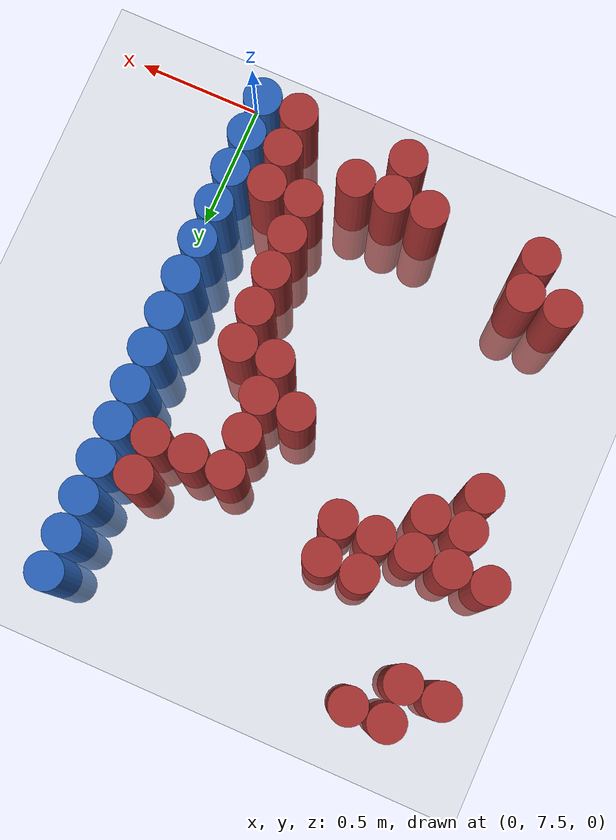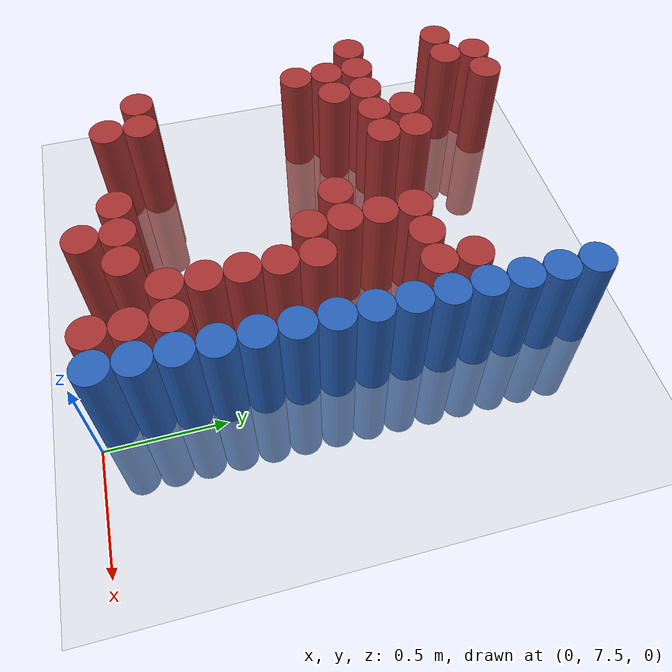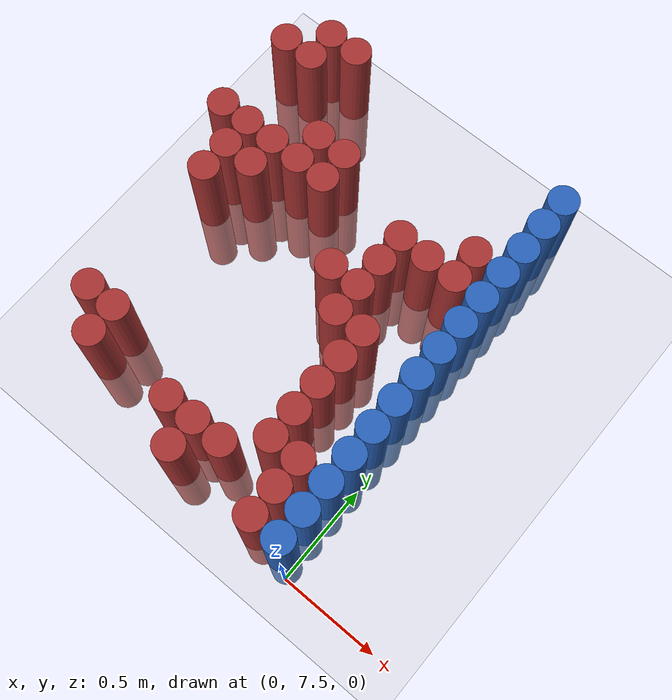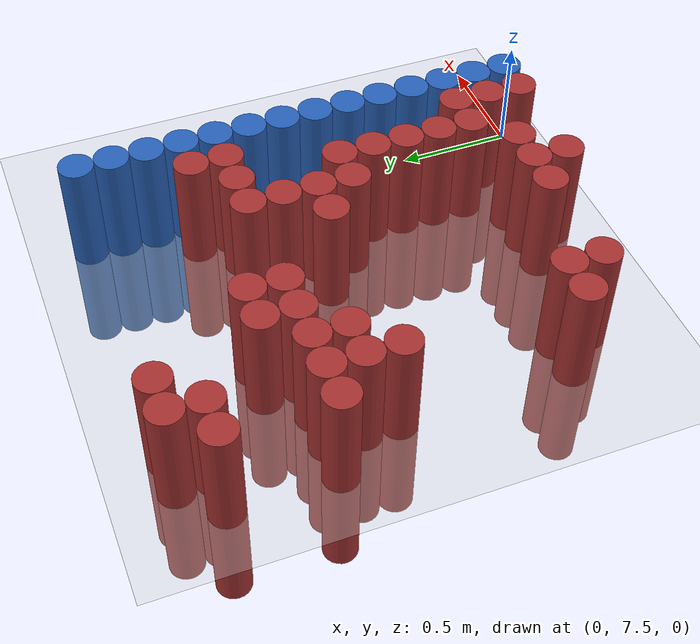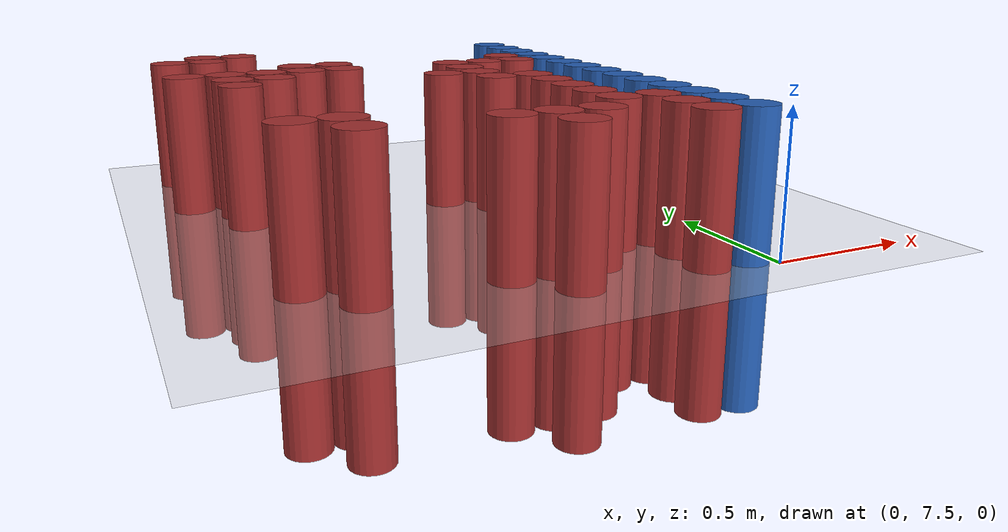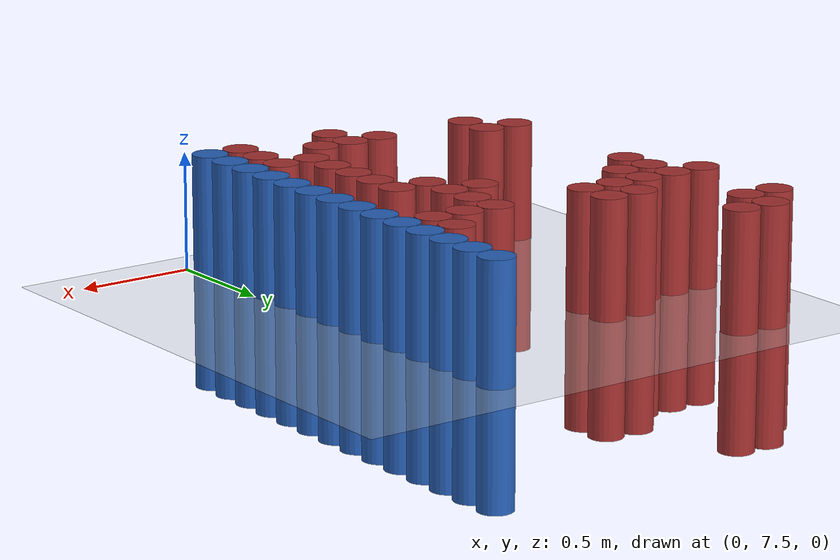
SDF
<sdf version="1.6">
 <world name="default">
  <model name="ground_plane">
   <static>1</static>
   <link name="link">
    <collision name="collision">
     <geometry><plane><normal>0 0 1</normal><size>100 100</size></plane></geometry>
     <surface><friction><ode><mu>100</mu><mu2>50</mu2></ode></friction></surface>
    </collision>
    <visual name="visual">
     <cast_shadows>0</cast_shadows>
     <geometry><plane><normal>0 0 1</normal><size>100 100</size></plane></geometry>
     <material>
      <script><uri>file://media/materials/scripts/gazebo.material</uri><name>Gazebo/Grey</name></script>
     </material>
    </visual>
   </link>
  </model>
  <model name="unit_cylinder_231">
   <static>1</static>
   <pose>-1.575000 8.925000 0.000000 0.000000 0.000000 0.000000</pose>
   <link name="link">
    <inertial>
     <mass>1</mass>
     <inertia><ixx>0.145833</ixx><ixy>0</ixy><ixz>0</ixz><iyy>0.145833</iyy><iyz>0</iyz><izz>0.125</izz></inertia>
    </inertial>
    <collision name="collision">
     <geometry><cylinder><radius>0.075000</radius><length>1</length></cylinder></geometry>
    </collision>
    <visual name="visual">
     <geometry><cylinder><radius>0.075000</radius><length>1</length></cylinder></geometry>
     <material>
      <ambient>0.648000 0.192000 0.192000 1</ambient>
      <diffuse>0.648000 0.192000 0.192000 1</diffuse>
     </material>
     <material>
      <script><name>Gazebo/Grey</name><uri>file://media/materials/scripts/gazebo.material</uri></script>
     </material>
    </visual>
   </link>
  </model>
  <model name="unit_cylinder_232">
   <static>1</static>
   <pose>-1.575000 9.375000 0.000000 0.000000 0.000000 0.000000</pose>
   <link name="link">
    <inertial>
     <mass>1</mass>
     <inertia><ixx>0.145833</ixx><ixy>0</ixy><ixz>0</ixz><iyy>0.145833</iyy><iyz>0</iyz><izz>0.125</izz></inertia>
    </inertial>
    <collision name="collision">
     <geometry><cylinder><radius>0.075000</radius><length>1</length></cylinder></geometry>
    </collision>
    <visual name="visual">
     <geometry><cylinder><radius>0.075000</radius><length>1</length></cylinder></geometry>
     <material>
      <ambient>0.648000 0.192000 0.192000 1</ambient>
      <diffuse>0.648000 0.192000 0.192000 1</diffuse>
     </material>
     <material>
      <script><name>Gazebo/Grey</name><uri>file://media/materials/scripts/gazebo.material</uri></script>
     </material>
    </visual>
   </link>
  </model>
  <model name="unit_cylinder_235">
   <static>1</static>
   <pose>-1.425000 7.875000 0.000000 0.000000 0.000000 0.000000</pose>
   <link name="link">
    <inertial>
     <mass>1</mass>
     <inertia><ixx>0.145833</ixx><ixy>0</ixy><ixz>0</ixz><iyy>0.145833</iyy><iyz>0</iyz><izz>0.125</izz></inertia>
    </inertial>
    <collision name="collision">
     <geometry><cylinder><radius>0.075000</radius><length>1</length></cylinder></geometry>
    </collision>
    <visual name="visual">
     <geometry><cylinder><radius>0.075000</radius><length>1</length></cylinder></geometry>
     <material>
      <ambient>0.648000 0.192000 0.192000 1</ambient>
      <diffuse>0.648000 0.192000 0.192000 1</diffuse>
     </material>
     <material>
      <script><name>Gazebo/Grey</name><uri>file://media/materials/scripts/gazebo.material</uri></script>
     </material>
    </visual>
   </link>
  </model>
  <model name="unit_cylinder_236">
   <static>1</static>
   <pose>-1.425000 8.625000 0.000000 0.000000 0.000000 0.000000</pose>
   <link name="link">
    <inertial>
     <mass>1</mass>
     <inertia><ixx>0.145833</ixx><ixy>0</ixy><ixz>0</ixz><iyy>0.145833</iyy><iyz>0</iyz><izz>0.125</izz></inertia>
    </inertial>
    <collision name="collision">
     <geometry><cylinder><radius>0.075000</radius><length>1</length></cylinder></geometry>
    </collision>
    <visual name="visual">
     <geometry><cylinder><radius>0.075000</radius><length>1</length></cylinder></geometry>
     <material>
      <ambient>0.648000 0.192000 0.192000 1</ambient>
      <diffuse>0.648000 0.192000 0.192000 1</diffuse>
     </material>
     <material>
      <script><name>Gazebo/Grey</name><uri>file://media/materials/scripts/gazebo.material</uri></script>
     </material>
    </visual>
   </link>
  </model>
  <model name="unit_cylinder_237">
   <static>1</static>
   <pose>-1.425000 8.775000 0.000000 0.000000 0.000000 0.000000</pose>
   <link name="link">
    <inertial>
     <mass>1</mass>
     <inertia><ixx>0.145833</ixx><ixy>0</ixy><ixz>0</ixz><iyy>0.145833</iyy><iyz>0</iyz><izz>0.125</izz></inertia>
    </inertial>
    <collision name="collision">
     <geometry><cylinder><radius>0.075000</radius><length>1</length></cylinder></geometry>
    </collision>
    <visual name="visual">
     <geometry><cylinder><radius>0.075000</radius><length>1</length></cylinder></geometry>
     <material>
      <ambient>0.648000 0.192000 0.192000 1</ambient>
      <diffuse>0.648000 0.192000 0.192000 1</diffuse>
     </material>
     <material>
      <script><name>Gazebo/Grey</name><uri>file://media/materials/scripts/gazebo.material</uri></script>
     </material>
    </visual>
   </link>
  </model>
  <model name="unit_cylinder_238">
   <static>1</static>
   <pose>-1.425000 8.925000 0.000000 0.000000 0.000000 0.000000</pose>
   <link name="link">
    <inertial>
     <mass>1</mass>
     <inertia><ixx>0.145833</ixx><ixy>0</ixy><ixz>0</ixz><iyy>0.145833</iyy><iyz>0</iyz><izz>0.125</izz></inertia>
    </inertial>
    <collision name="collision">
     <geometry><cylinder><radius>0.075000</radius><length>1</length></cylinder></geometry>
    </collision>
    <visual name="visual">
     <geometry><cylinder><radius>0.075000</radius><length>1</length></cylinder></geometry>
     <material>
      <ambient>0.648000 0.192000 0.192000 1</ambient>
      <diffuse>0.648000 0.192000 0.192000 1</diffuse>
     </material>
     <material>
      <script><name>Gazebo/Grey</name><uri>file://media/materials/scripts/gazebo.material</uri></script>
     </material>
    </visual>
   </link>
  </model>
  <model name="unit_cylinder_239">
   <static>1</static>
   <pose>-1.425000 9.375000 0.000000 0.000000 0.000000 0.000000</pose>
   <link name="link">
    <inertial>
     <mass>1</mass>
     <inertia><ixx>0.145833</ixx><ixy>0</ixy><ixz>0</ixz><iyy>0.145833</iyy><iyz>0</iyz><izz>0.125</izz></inertia>
    </inertial>
    <collision name="collision">
     <geometry><cylinder><radius>0.075000</radius><length>1</length></cylinder></geometry>
    </collision>
    <visual name="visual">
     <geometry><cylinder><radius>0.075000</radius><length>1</length></cylinder></geometry>
     <material>
      <ambient>0.648000 0.192000 0.192000 1</ambient>
      <diffuse>0.648000 0.192000 0.192000 1</diffuse>
     </material>
     <material>
      <script><name>Gazebo/Grey</name><uri>file://media/materials/scripts/gazebo.material</uri></script>
     </material>
    </visual>
   </link>
  </model>
  <model name="unit_cylinder_240">
   <static>1</static>
   <pose>-1.425000 9.525000 0.000000 0.000000 0.000000 0.000000</pose>
   <link name="link">
    <inertial>
     <mass>1</mass>
     <inertia><ixx>0.145833</ixx><ixy>0</ixy><ixz>0</ixz><iyy>0.145833</iyy><iyz>0</iyz><izz>0.125</izz></inertia>
    </inertial>
    <collision name="collision">
     <geometry><cylinder><radius>0.075000</radius><length>1</length></cylinder></geometry>
    </collision>
    <visual name="visual">
     <geometry><cylinder><radius>0.075000</radius><length>1</length></cylinder></geometry>
     <material>
      <ambient>0.648000 0.192000 0.192000 1</ambient>
      <diffuse>0.648000 0.192000 0.192000 1</diffuse>
     </material>
     <material>
      <script><name>Gazebo/Grey</name><uri>file://media/materials/scripts/gazebo.material</uri></script>
     </material>
    </visual>
   </link>
  </model>
  <model name="unit_cylinder_245">
   <static>1</static>
   <pose>-1.275000 7.725000 0.000000 0.000000 0.000000 0.000000</pose>
   <link name="link">
    <inertial>
     <mass>1</mass>
     <inertia><ixx>0.145833</ixx><ixy>0</ixy><ixz>0</ixz><iyy>0.145833</iyy><iyz>0</iyz><izz>0.125</izz></inertia>
    </inertial>
    <collision name="collision">
     <geometry><cylinder><radius>0.075000</radius><length>1</length></cylinder></geometry>
    </collision>
    <visual name="visual">
     <geometry><cylinder><radius>0.075000</radius><length>1</length></cylinder></geometry>
     <material>
      <ambient>0.648000 0.192000 0.192000 1</ambient>
      <diffuse>0.648000 0.192000 0.192000 1</diffuse>
     </material>
     <material>
      <script><name>Gazebo/Grey</name><uri>file://media/materials/scripts/gazebo.material</uri></script>
     </material>
    </visual>
   </link>
  </model>
  <model name="unit_cylinder_246">
   <static>1</static>
   <pose>-1.275000 7.875000 0.000000 0.000000 0.000000 0.000000</pose>
   <link name="link">
    <inertial>
     <mass>1</mass>
     <inertia><ixx>0.145833</ixx><ixy>0</ixy><ixz>0</ixz><iyy>0.145833</iyy><iyz>0</iyz><izz>0.125</izz></inertia>
    </inertial>
    <collision name="collision">
     <geometry><cylinder><radius>0.075000</radius><length>1</length></cylinder></geometry>
    </collision>
    <visual name="visual">
     <geometry><cylinder><radius>0.075000</radius><length>1</length></cylinder></geometry>
     <material>
      <ambient>0.648000 0.192000 0.192000 1</ambient>
      <diffuse>0.648000 0.192000 0.192000 1</diffuse>
     </material>
     <material>
      <script><name>Gazebo/Grey</name><uri>file://media/materials/scripts/gazebo.material</uri></script>
     </material>
    </visual>
   </link>
  </model>
  <model name="unit_cylinder_247">
   <static>1</static>
   <pose>-1.275000 8.775000 0.000000 0.000000 0.000000 0.000000</pose>
   <link name="link">
    <inertial>
     <mass>1</mass>
     <inertia><ixx>0.145833</ixx><ixy>0</ixy><ixz>0</ixz><iyy>0.145833</iyy><iyz>0</iyz><izz>0.125</izz></inertia>
    </inertial>
    <collision name="collision">
     <geometry><cylinder><radius>0.075000</radius><length>1</length></cylinder></geometry>
    </collision>
    <visual name="visual">
     <geometry><cylinder><radius>0.075000</radius><length>1</length></cylinder></geometry>
     <material>
      <ambient>0.648000 0.192000 0.192000 1</ambient>
      <diffuse>0.648000 0.192000 0.192000 1</diffuse>
     </material>
     <material>
      <script><name>Gazebo/Grey</name><uri>file://media/materials/scripts/gazebo.material</uri></script>
     </material>
    </visual>
   </link>
  </model>
  <model name="unit_cylinder_248">
   <static>1</static>
   <pose>-1.275000 8.925000 0.000000 0.000000 0.000000 0.000000</pose>
   <link name="link">
    <inertial>
     <mass>1</mass>
     <inertia><ixx>0.145833</ixx><ixy>0</ixy><ixz>0</ixz><iyy>0.145833</iyy><iyz>0</iyz><izz>0.125</izz></inertia>
    </inertial>
    <collision name="collision">
     <geometry><cylinder><radius>0.075000</radius><length>1</length></cylinder></geometry>
    </collision>
    <visual name="visual">
     <geometry><cylinder><radius>0.075000</radius><length>1</length></cylinder></geometry>
     <material>
      <ambient>0.648000 0.192000 0.192000 1</ambient>
      <diffuse>0.648000 0.192000 0.192000 1</diffuse>
     </material>
     <material>
      <script><name>Gazebo/Grey</name><uri>file://media/materials/scripts/gazebo.material</uri></script>
     </material>
    </visual>
   </link>
  </model>
  <model name="unit_cylinder_249">
   <static>1</static>
   <pose>-1.275000 9.525000 0.000000 0.000000 0.000000 0.000000</pose>
   <link name="link">
    <inertial>
     <mass>1</mass>
     <inertia><ixx>0.145833</ixx><ixy>0</ixy><ixz>0</ixz><iyy>0.145833</iyy><iyz>0</iyz><izz>0.125</izz></inertia>
    </inertial>
    <collision name="collision">
     <geometry><cylinder><radius>0.075000</radius><length>1</length></cylinder></geometry>
    </collision>
    <visual name="visual">
     <geometry><cylinder><radius>0.075000</radius><length>1</length></cylinder></geometry>
     <material>
      <ambient>0.648000 0.192000 0.192000 1</ambient>
      <diffuse>0.648000 0.192000 0.192000 1</diffuse>
     </material>
     <material>
      <script><name>Gazebo/Grey</name><uri>file://media/materials/scripts/gazebo.material</uri></script>
     </material>
    </visual>
   </link>
  </model>
  <model name="unit_cylinder_259">
   <static>1</static>
   <pose>-1.125000 8.925000 0.000000 0.000000 0.000000 0.000000</pose>
   <link name="link">
    <inertial>
     <mass>1</mass>
     <inertia><ixx>0.145833</ixx><ixy>0</ixy><ixz>0</ixz><iyy>0.145833</iyy><iyz>0</iyz><izz>0.125</izz></inertia>
    </inertial>
    <collision name="collision">
     <geometry><cylinder><radius>0.075000</radius><length>1</length></cylinder></geometry>
    </collision>
    <visual name="visual">
     <geometry><cylinder><radius>0.075000</radius><length>1</length></cylinder></geometry>
     <material>
      <ambient>0.648000 0.192000 0.192000 1</ambient>
      <diffuse>0.648000 0.192000 0.192000 1</diffuse>
     </material>
     <material>
      <script><name>Gazebo/Grey</name><uri>file://media/materials/scripts/gazebo.material</uri></script>
     </material>
    </visual>
   </link>
  </model>
  <model name="unit_cylinder_260">
   <static>1</static>
   <pose>-1.125000 9.075000 0.000000 0.000000 0.000000 0.000000</pose>
   <link name="link">
    <inertial>
     <mass>1</mass>
     <inertia><ixx>0.145833</ixx><ixy>0</ixy><ixz>0</ixz><iyy>0.145833</iyy><iyz>0</iyz><izz>0.125</izz></inertia>
    </inertial>
    <collision name="collision">
     <geometry><cylinder><radius>0.075000</radius><length>1</length></cylinder></geometry>
    </collision>
    <visual name="visual">
     <geometry><cylinder><radius>0.075000</radius><length>1</length></cylinder></geometry>
     <material>
      <ambient>0.648000 0.192000 0.192000 1</ambient>
      <diffuse>0.648000 0.192000 0.192000 1</diffuse>
     </material>
     <material>
      <script><name>Gazebo/Grey</name><uri>file://media/materials/scripts/gazebo.material</uri></script>
     </material>
    </visual>
   </link>
  </model>
  <model name="unit_cylinder_267">
   <static>1</static>
   <pose>-0.975000 8.925000 0.000000 0.000000 0.000000 0.000000</pose>
   <link name="link">
    <inertial>
     <mass>1</mass>
     <inertia><ixx>0.145833</ixx><ixy>0</ixy><ixz>0</ixz><iyy>0.145833</iyy><iyz>0</iyz><izz>0.125</izz></inertia>
    </inertial>
    <collision name="collision">
     <geometry><cylinder><radius>0.075000</radius><length>1</length></cylinder></geometry>
    </collision>
    <visual name="visual">
     <geometry><cylinder><radius>0.075000</radius><length>1</length></cylinder></geometry>
     <material>
      <ambient>0.648000 0.192000 0.192000 1</ambient>
      <diffuse>0.648000 0.192000 0.192000 1</diffuse>
     </material>
     <material>
      <script><name>Gazebo/Grey</name><uri>file://media/materials/scripts/gazebo.material</uri></script>
     </material>
    </visual>
   </link>
  </model>
  <model name="unit_cylinder_268">
   <static>1</static>
   <pose>-0.975000 9.075000 0.000000 0.000000 0.000000 0.000000</pose>
   <link name="link">
    <inertial>
     <mass>1</mass>
     <inertia><ixx>0.145833</ixx><ixy>0</ixy><ixz>0</ixz><iyy>0.145833</iyy><iyz>0</iyz><izz>0.125</izz></inertia>
    </inertial>
    <collision name="collision">
     <geometry><cylinder><radius>0.075000</radius><length>1</length></cylinder></geometry>
    </collision>
    <visual name="visual">
     <geometry><cylinder><radius>0.075000</radius><length>1</length></cylinder></geometry>
     <material>
      <ambient>0.648000 0.192000 0.192000 1</ambient>
      <diffuse>0.648000 0.192000 0.192000 1</diffuse>
     </material>
     <material>
      <script><name>Gazebo/Grey</name><uri>file://media/materials/scripts/gazebo.material</uri></script>
     </material>
    </visual>
   </link>
  </model>
  <model name="unit_cylinder_276">
   <static>1</static>
   <pose>-0.825000 7.725000 0.000000 0.000000 0.000000 0.000000</pose>
   <link name="link">
    <inertial>
     <mass>1</mass>
     <inertia><ixx>0.145833</ixx><ixy>0</ixy><ixz>0</ixz><iyy>0.145833</iyy><iyz>0</iyz><izz>0.125</izz></inertia>
    </inertial>
    <collision name="collision">
     <geometry><cylinder><radius>0.075000</radius><length>1</length></cylinder></geometry>
    </collision>
    <visual name="visual">
     <geometry><cylinder><radius>0.075000</radius><length>1</length></cylinder></geometry>
     <material>
      <ambient>0.648000 0.192000 0.192000 1</ambient>
      <diffuse>0.648000 0.192000 0.192000 1</diffuse>
     </material>
     <material>
      <script><name>Gazebo/Grey</name><uri>file://media/materials/scripts/gazebo.material</uri></script>
     </material>
    </visual>
   </link>
  </model>
  <model name="unit_cylinder_283">
   <static>1</static>
   <pose>-0.675000 7.575000 0.000000 0.000000 0.000000 0.000000</pose>
   <link name="link">
    <inertial>
     <mass>1</mass>
     <inertia><ixx>0.145833</ixx><ixy>0</ixy><ixz>0</ixz><iyy>0.145833</iyy><iyz>0</iyz><izz>0.125</izz></inertia>
    </inertial>
    <collision name="collision">
     <geometry><cylinder><radius>0.075000</radius><length>1</length></cylinder></geometry>
    </collision>
    <visual name="visual">
     <geometry><cylinder><radius>0.075000</radius><length>1</length></cylinder></geometry>
     <material>
      <ambient>0.648000 0.192000 0.192000 1</ambient>
      <diffuse>0.648000 0.192000 0.192000 1</diffuse>
     </material>
     <material>
      <script><name>Gazebo/Grey</name><uri>file://media/materials/scripts/gazebo.material</uri></script>
     </material>
    </visual>
   </link>
  </model>
  <model name="unit_cylinder_284">
   <static>1</static>
   <pose>-0.675000 7.725000 0.000000 0.000000 0.000000 0.000000</pose>
   <link name="link">
    <inertial>
     <mass>1</mass>
     <inertia><ixx>0.145833</ixx><ixy>0</ixy><ixz>0</ixz><iyy>0.145833</iyy><iyz>0</iyz><izz>0.125</izz></inertia>
    </inertial>
    <collision name="collision">
     <geometry><cylinder><radius>0.075000</radius><length>1</length></cylinder></geometry>
    </collision>
    <visual name="visual">
     <geometry><cylinder><radius>0.075000</radius><length>1</length></cylinder></geometry>
     <material>
      <ambient>0.648000 0.192000 0.192000 1</ambient>
      <diffuse>0.648000 0.192000 0.192000 1</diffuse>
     </material>
     <material>
      <script><name>Gazebo/Grey</name><uri>file://media/materials/scripts/gazebo.material</uri></script>
     </material>
    </visual>
   </link>
  </model>
  <model name="unit_cylinder_285">
   <static>1</static>
   <pose>-0.675000 8.625000 0.000000 0.000000 0.000000 0.000000</pose>
   <link name="link">
    <inertial>
     <mass>1</mass>
     <inertia><ixx>0.145833</ixx><ixy>0</ixy><ixz>0</ixz><iyy>0.145833</iyy><iyz>0</iyz><izz>0.125</izz></inertia>
    </inertial>
    <collision name="collision">
     <geometry><cylinder><radius>0.075000</radius><length>1</length></cylinder></geometry>
    </collision>
    <visual name="visual">
     <geometry><cylinder><radius>0.075000</radius><length>1</length></cylinder></geometry>
     <material>
      <ambient>0.648000 0.192000 0.192000 1</ambient>
      <diffuse>0.648000 0.192000 0.192000 1</diffuse>
     </material>
     <material>
      <script><name>Gazebo/Grey</name><uri>file://media/materials/scripts/gazebo.material</uri></script>
     </material>
    </visual>
   </link>
  </model>
  <model name="unit_cylinder_291">
   <static>1</static>
   <pose>-0.525000 7.725000 0.000000 0.000000 0.000000 0.000000</pose>
   <link name="link">
    <inertial>
     <mass>1</mass>
     <inertia><ixx>0.145833</ixx><ixy>0</ixy><ixz>0</ixz><iyy>0.145833</iyy><iyz>0</iyz><izz>0.125</izz></inertia>
    </inertial>
    <collision name="collision">
     <geometry><cylinder><radius>0.075000</radius><length>1</length></cylinder></geometry>
    </collision>
    <visual name="visual">
     <geometry><cylinder><radius>0.075000</radius><length>1</length></cylinder></geometry>
     <material>
      <ambient>0.648000 0.192000 0.192000 1</ambient>
      <diffuse>0.648000 0.192000 0.192000 1</diffuse>
     </material>
     <material>
      <script><name>Gazebo/Grey</name><uri>file://media/materials/scripts/gazebo.material</uri></script>
     </material>
    </visual>
   </link>
  </model>
  <model name="unit_cylinder_292">
   <static>1</static>
   <pose>-0.525000 8.475000 0.000000 0.000000 0.000000 0.000000</pose>
   <link name="link">
    <inertial>
     <mass>1</mass>
     <inertia><ixx>0.145833</ixx><ixy>0</ixy><ixz>0</ixz><iyy>0.145833</iyy><iyz>0</iyz><izz>0.125</izz></inertia>
    </inertial>
    <collision name="collision">
     <geometry><cylinder><radius>0.075000</radius><length>1</length></cylinder></geometry>
    </collision>
    <visual name="visual">
     <geometry><cylinder><radius>0.075000</radius><length>1</length></cylinder></geometry>
     <material>
      <ambient>0.648000 0.192000 0.192000 1</ambient>
      <diffuse>0.648000 0.192000 0.192000 1</diffuse>
     </material>
     <material>
      <script><name>Gazebo/Grey</name><uri>file://media/materials/scripts/gazebo.material</uri></script>
     </material>
    </visual>
   </link>
  </model>
  <model name="unit_cylinder_293">
   <static>1</static>
   <pose>-0.525000 8.625000 0.000000 0.000000 0.000000 0.000000</pose>
   <link name="link">
    <inertial>
     <mass>1</mass>
     <inertia><ixx>0.145833</ixx><ixy>0</ixy><ixz>0</ixz><iyy>0.145833</iyy><iyz>0</iyz><izz>0.125</izz></inertia>
    </inertial>
    <collision name="collision">
     <geometry><cylinder><radius>0.075000</radius><length>1</length></cylinder></geometry>
    </collision>
    <visual name="visual">
     <geometry><cylinder><radius>0.075000</radius><length>1</length></cylinder></geometry>
     <material>
      <ambient>0.648000 0.192000 0.192000 1</ambient>
      <diffuse>0.648000 0.192000 0.192000 1</diffuse>
     </material>
     <material>
      <script><name>Gazebo/Grey</name><uri>file://media/materials/scripts/gazebo.material</uri></script>
     </material>
    </visual>
   </link>
  </model>
  <model name="unit_cylinder_294">
   <static>1</static>
   <pose>-0.525000 8.775000 0.000000 0.000000 0.000000 0.000000</pose>
   <link name="link">
    <inertial>
     <mass>1</mass>
     <inertia><ixx>0.145833</ixx><ixy>0</ixy><ixz>0</ixz><iyy>0.145833</iyy><iyz>0</iyz><izz>0.125</izz></inertia>
    </inertial>
    <collision name="collision">
     <geometry><cylinder><radius>0.075000</radius><length>1</length></cylinder></geometry>
    </collision>
    <visual name="visual">
     <geometry><cylinder><radius>0.075000</radius><length>1</length></cylinder></geometry>
     <material>
      <ambient>0.648000 0.192000 0.192000 1</ambient>
      <diffuse>0.648000 0.192000 0.192000 1</diffuse>
     </material>
     <material>
      <script><name>Gazebo/Grey</name><uri>file://media/materials/scripts/gazebo.material</uri></script>
     </material>
    </visual>
   </link>
  </model>
  <model name="unit_cylinder_295">
   <static>1</static>
   <pose>-0.525000 8.925000 0.000000 0.000000 0.000000 0.000000</pose>
   <link name="link">
    <inertial>
     <mass>1</mass>
     <inertia><ixx>0.145833</ixx><ixy>0</ixy><ixz>0</ixz><iyy>0.145833</iyy><iyz>0</iyz><izz>0.125</izz></inertia>
    </inertial>
    <collision name="collision">
     <geometry><cylinder><radius>0.075000</radius><length>1</length></cylinder></geometry>
    </collision>
    <visual name="visual">
     <geometry><cylinder><radius>0.075000</radius><length>1</length></cylinder></geometry>
     <material>
      <ambient>0.648000 0.192000 0.192000 1</ambient>
      <diffuse>0.648000 0.192000 0.192000 1</diffuse>
     </material>
     <material>
      <script><name>Gazebo/Grey</name><uri>file://media/materials/scripts/gazebo.material</uri></script>
     </material>
    </visual>
   </link>
  </model>
  <model name="unit_cylinder_307">
   <static>1</static>
   <pose>-0.375000 7.875000 0.000000 0.000000 0.000000 0.000000</pose>
   <link name="link">
    <inertial>
     <mass>1</mass>
     <inertia><ixx>0.145833</ixx><ixy>0</ixy><ixz>0</ixz><iyy>0.145833</iyy><iyz>0</iyz><izz>0.125</izz></inertia>
    </inertial>
    <collision name="collision">
     <geometry><cylinder><radius>0.075000</radius><length>1</length></cylinder></geometry>
    </collision>
    <visual name="visual">
     <geometry><cylinder><radius>0.075000</radius><length>1</length></cylinder></geometry>
     <material>
      <ambient>0.648000 0.192000 0.192000 1</ambient>
      <diffuse>0.648000 0.192000 0.192000 1</diffuse>
     </material>
     <material>
      <script><name>Gazebo/Grey</name><uri>file://media/materials/scripts/gazebo.material</uri></script>
     </material>
    </visual>
   </link>
  </model>
  <model name="unit_cylinder_308">
   <static>1</static>
   <pose>-0.375000 8.025000 0.000000 0.000000 0.000000 0.000000</pose>
   <link name="link">
    <inertial>
     <mass>1</mass>
     <inertia><ixx>0.145833</ixx><ixy>0</ixy><ixz>0</ixz><iyy>0.145833</iyy><iyz>0</iyz><izz>0.125</izz></inertia>
    </inertial>
    <collision name="collision">
     <geometry><cylinder><radius>0.075000</radius><length>1</length></cylinder></geometry>
    </collision>
    <visual name="visual">
     <geometry><cylinder><radius>0.075000</radius><length>1</length></cylinder></geometry>
     <material>
      <ambient>0.648000 0.192000 0.192000 1</ambient>
      <diffuse>0.648000 0.192000 0.192000 1</diffuse>
     </material>
     <material>
      <script><name>Gazebo/Grey</name><uri>file://media/materials/scripts/gazebo.material</uri></script>
     </material>
    </visual>
   </link>
  </model>
  <model name="unit_cylinder_309">
   <static>1</static>
   <pose>-0.375000 8.175000 0.000000 0.000000 0.000000 0.000000</pose>
   <link name="link">
    <inertial>
     <mass>1</mass>
     <inertia><ixx>0.145833</ixx><ixy>0</ixy><ixz>0</ixz><iyy>0.145833</iyy><iyz>0</iyz><izz>0.125</izz></inertia>
    </inertial>
    <collision name="collision">
     <geometry><cylinder><radius>0.075000</radius><length>1</length></cylinder></geometry>
    </collision>
    <visual name="visual">
     <geometry><cylinder><radius>0.075000</radius><length>1</length></cylinder></geometry>
     <material>
      <ambient>0.648000 0.192000 0.192000 1</ambient>
      <diffuse>0.648000 0.192000 0.192000 1</diffuse>
     </material>
     <material>
      <script><name>Gazebo/Grey</name><uri>file://media/materials/scripts/gazebo.material</uri></script>
     </material>
    </visual>
   </link>
  </model>
  <model name="unit_cylinder_310">
   <static>1</static>
   <pose>-0.375000 8.325000 0.000000 0.000000 0.000000 0.000000</pose>
   <link name="link">
    <inertial>
     <mass>1</mass>
     <inertia><ixx>0.145833</ixx><ixy>0</ixy><ixz>0</ixz><iyy>0.145833</iyy><iyz>0</iyz><izz>0.125</izz></inertia>
    </inertial>
    <collision name="collision">
     <geometry><cylinder><radius>0.075000</radius><length>1</length></cylinder></geometry>
    </collision>
    <visual name="visual">
     <geometry><cylinder><radius>0.075000</radius><length>1</length></cylinder></geometry>
     <material>
      <ambient>0.648000 0.192000 0.192000 1</ambient>
      <diffuse>0.648000 0.192000 0.192000 1</diffuse>
     </material>
     <material>
      <script><name>Gazebo/Grey</name><uri>file://media/materials/scripts/gazebo.material</uri></script>
     </material>
    </visual>
   </link>
  </model>
  <model name="unit_cylinder_311">
   <static>1</static>
   <pose>-0.375000 8.475000 0.000000 0.000000 0.000000 0.000000</pose>
   <link name="link">
    <inertial>
     <mass>1</mass>
     <inertia><ixx>0.145833</ixx><ixy>0</ixy><ixz>0</ixz><iyy>0.145833</iyy><iyz>0</iyz><izz>0.125</izz></inertia>
    </inertial>
    <collision name="collision">
     <geometry><cylinder><radius>0.075000</radius><length>1</length></cylinder></geometry>
    </collision>
    <visual name="visual">
     <geometry><cylinder><radius>0.075000</radius><length>1</length></cylinder></geometry>
     <material>
      <ambient>0.648000 0.192000 0.192000 1</ambient>
      <diffuse>0.648000 0.192000 0.192000 1</diffuse>
     </material>
     <material>
      <script><name>Gazebo/Grey</name><uri>file://media/materials/scripts/gazebo.material</uri></script>
     </material>
    </visual>
   </link>
  </model>
  <model name="unit_cylinder_312">
   <static>1</static>
   <pose>-0.375000 8.925000 0.000000 0.000000 0.000000 0.000000</pose>
   <link name="link">
    <inertial>
     <mass>1</mass>
     <inertia><ixx>0.145833</ixx><ixy>0</ixy><ixz>0</ixz><iyy>0.145833</iyy><iyz>0</iyz><izz>0.125</izz></inertia>
    </inertial>
    <collision name="collision">
     <geometry><cylinder><radius>0.075000</radius><length>1</length></cylinder></geometry>
    </collision>
    <visual name="visual">
     <geometry><cylinder><radius>0.075000</radius><length>1</length></cylinder></geometry>
     <material>
      <ambient>0.648000 0.192000 0.192000 1</ambient>
      <diffuse>0.648000 0.192000 0.192000 1</diffuse>
     </material>
     <material>
      <script><name>Gazebo/Grey</name><uri>file://media/materials/scripts/gazebo.material</uri></script>
     </material>
    </visual>
   </link>
  </model>
  <model name="unit_cylinder_320">
   <static>1</static>
   <pose>-0.225000 7.575000 0.000000 0.000000 0.000000 0.000000</pose>
   <link name="link">
    <inertial>
     <mass>1</mass>
     <inertia><ixx>0.145833</ixx><ixy>0</ixy><ixz>0</ixz><iyy>0.145833</iyy><iyz>0</iyz><izz>0.125</izz></inertia>
    </inertial>
    <collision name="collision">
     <geometry><cylinder><radius>0.075000</radius><length>1</length></cylinder></geometry>
    </collision>
    <visual name="visual">
     <geometry><cylinder><radius>0.075000</radius><length>1</length></cylinder></geometry>
     <material>
      <ambient>0.648000 0.192000 0.192000 1</ambient>
      <diffuse>0.648000 0.192000 0.192000 1</diffuse>
     </material>
     <material>
      <script><name>Gazebo/Grey</name><uri>file://media/materials/scripts/gazebo.material</uri></script>
     </material>
    </visual>
   </link>
  </model>
  <model name="unit_cylinder_321">
   <static>1</static>
   <pose>-0.225000 7.725000 0.000000 0.000000 0.000000 0.000000</pose>
   <link name="link">
    <inertial>
     <mass>1</mass>
     <inertia><ixx>0.145833</ixx><ixy>0</ixy><ixz>0</ixz><iyy>0.145833</iyy><iyz>0</iyz><izz>0.125</izz></inertia>
    </inertial>
    <collision name="collision">
     <geometry><cylinder><radius>0.075000</radius><length>1</length></cylinder></geometry>
    </collision>
    <visual name="visual">
     <geometry><cylinder><radius>0.075000</radius><length>1</length></cylinder></geometry>
     <material>
      <ambient>0.648000 0.192000 0.192000 1</ambient>
      <diffuse>0.648000 0.192000 0.192000 1</diffuse>
     </material>
     <material>
      <script><name>Gazebo/Grey</name><uri>file://media/materials/scripts/gazebo.material</uri></script>
     </material>
    </visual>
   </link>
  </model>
  <model name="unit_cylinder_322">
   <static>1</static>
   <pose>-0.225000 7.875000 0.000000 0.000000 0.000000 0.000000</pose>
   <link name="link">
    <inertial>
     <mass>1</mass>
     <inertia><ixx>0.145833</ixx><ixy>0</ixy><ixz>0</ixz><iyy>0.145833</iyy><iyz>0</iyz><izz>0.125</izz></inertia>
    </inertial>
    <collision name="collision">
     <geometry><cylinder><radius>0.075000</radius><length>1</length></cylinder></geometry>
    </collision>
    <visual name="visual">
     <geometry><cylinder><radius>0.075000</radius><length>1</length></cylinder></geometry>
     <material>
      <ambient>0.648000 0.192000 0.192000 1</ambient>
      <diffuse>0.648000 0.192000 0.192000 1</diffuse>
     </material>
     <material>
      <script><name>Gazebo/Grey</name><uri>file://media/materials/scripts/gazebo.material</uri></script>
     </material>
    </visual>
   </link>
  </model>
  <model name="unit_cylinder_323">
   <static>1</static>
   <pose>-0.225000 8.925000 0.000000 0.000000 0.000000 0.000000</pose>
   <link name="link">
    <inertial>
     <mass>1</mass>
     <inertia><ixx>0.145833</ixx><ixy>0</ixy><ixz>0</ixz><iyy>0.145833</iyy><iyz>0</iyz><izz>0.125</izz></inertia>
    </inertial>
    <collision name="collision">
     <geometry><cylinder><radius>0.075000</radius><length>1</length></cylinder></geometry>
    </collision>
    <visual name="visual">
     <geometry><cylinder><radius>0.075000</radius><length>1</length></cylinder></geometry>
     <material>
      <ambient>0.648000 0.192000 0.192000 1</ambient>
      <diffuse>0.648000 0.192000 0.192000 1</diffuse>
     </material>
     <material>
      <script><name>Gazebo/Grey</name><uri>file://media/materials/scripts/gazebo.material</uri></script>
     </material>
    </visual>
   </link>
  </model>
  <model name="unit_cylinder_324">
   <static>1</static>
   <pose>-0.225000 9.075000 0.000000 0.000000 0.000000 0.000000</pose>
   <link name="link">
    <inertial>
     <mass>1</mass>
     <inertia><ixx>0.145833</ixx><ixy>0</ixy><ixz>0</ixz><iyy>0.145833</iyy><iyz>0</iyz><izz>0.125</izz></inertia>
    </inertial>
    <collision name="collision">
     <geometry><cylinder><radius>0.075000</radius><length>1</length></cylinder></geometry>
    </collision>
    <visual name="visual">
     <geometry><cylinder><radius>0.075000</radius><length>1</length></cylinder></geometry>
     <material>
      <ambient>0.648000 0.192000 0.192000 1</ambient>
      <diffuse>0.648000 0.192000 0.192000 1</diffuse>
     </material>
     <material>
      <script><name>Gazebo/Grey</name><uri>file://media/materials/scripts/gazebo.material</uri></script>
     </material>
    </visual>
   </link>
  </model>
  <model name="unit_cylinder_341">
   <static>1</static>
   <pose>-0.075000 7.575000 0.000000 0.000000 0.000000 0.000000</pose>
   <link name="link">
    <inertial>
     <mass>1</mass>
     <inertia><ixx>0.145833</ixx><ixy>0</ixy><ixz>0</ixz><iyy>0.145833</iyy><iyz>0</iyz><izz>0.125</izz></inertia>
    </inertial>
    <collision name="collision">
     <geometry><cylinder><radius>0.075000</radius><length>1</length></cylinder></geometry>
    </collision>
    <visual name="visual">
     <geometry><cylinder><radius>0.075000</radius><length>1</length></cylinder></geometry>
     <material>
      <ambient>0.152000 0.379000 0.720000 1</ambient>
      <diffuse>0.152000 0.379000 0.720000 1</diffuse>
     </material>
     <material>
      <script><name>Gazebo/Grey</name><uri>file://media/materials/scripts/gazebo.material</uri></script>
     </material>
    </visual>
   </link>
  </model>
  <model name="unit_cylinder_342">
   <static>1</static>
   <pose>-0.075000 7.725000 0.000000 0.000000 0.000000 0.000000</pose>
   <link name="link">
    <inertial>
     <mass>1</mass>
     <inertia><ixx>0.145833</ixx><ixy>0</ixy><ixz>0</ixz><iyy>0.145833</iyy><iyz>0</iyz><izz>0.125</izz></inertia>
    </inertial>
    <collision name="collision">
     <geometry><cylinder><radius>0.075000</radius><length>1</length></cylinder></geometry>
    </collision>
    <visual name="visual">
     <geometry><cylinder><radius>0.075000</radius><length>1</length></cylinder></geometry>
     <material>
      <ambient>0.152000 0.379000 0.720000 1</ambient>
      <diffuse>0.152000 0.379000 0.720000 1</diffuse>
     </material>
     <material>
      <script><name>Gazebo/Grey</name><uri>file://media/materials/scripts/gazebo.material</uri></script>
     </material>
    </visual>
   </link>
  </model>
  <model name="unit_cylinder_343">
   <static>1</static>
   <pose>-0.075000 7.875000 0.000000 0.000000 0.000000 0.000000</pose>
   <link name="link">
    <inertial>
     <mass>1</mass>
     <inertia><ixx>0.145833</ixx><ixy>0</ixy><ixz>0</ixz><iyy>0.145833</iyy><iyz>0</iyz><izz>0.125</izz></inertia>
    </inertial>
    <collision name="collision">
     <geometry><cylinder><radius>0.075000</radius><length>1</length></cylinder></geometry>
    </collision>
    <visual name="visual">
     <geometry><cylinder><radius>0.075000</radius><length>1</length></cylinder></geometry>
     <material>
      <ambient>0.152000 0.379000 0.720000 1</ambient>
      <diffuse>0.152000 0.379000 0.720000 1</diffuse>
     </material>
     <material>
      <script><name>Gazebo/Grey</name><uri>file://media/materials/scripts/gazebo.material</uri></script>
     </material>
    </visual>
   </link>
  </model>
  <model name="unit_cylinder_344">
   <static>1</static>
   <pose>-0.075000 8.025000 0.000000 0.000000 0.000000 0.000000</pose>
   <link name="link">
    <inertial>
     <mass>1</mass>
     <inertia><ixx>0.145833</ixx><ixy>0</ixy><ixz>0</ixz><iyy>0.145833</iyy><iyz>0</iyz><izz>0.125</izz></inertia>
    </inertial>
    <collision name="collision">
     <geometry><cylinder><radius>0.075000</radius><length>1</length></cylinder></geometry>
    </collision>
    <visual name="visual">
     <geometry><cylinder><radius>0.075000</radius><length>1</length></cylinder></geometry>
     <material>
      <ambient>0.152000 0.379000 0.720000 1</ambient>
      <diffuse>0.152000 0.379000 0.720000 1</diffuse>
     </material>
     <material>
      <script><name>Gazebo/Grey</name><uri>file://media/materials/scripts/gazebo.material</uri></script>
     </material>
    </visual>
   </link>
  </model>
  <model name="unit_cylinder_345">
   <static>1</static>
   <pose>-0.075000 8.175000 0.000000 0.000000 0.000000 0.000000</pose>
   <link name="link">
    <inertial>
     <mass>1</mass>
     <inertia><ixx>0.145833</ixx><ixy>0</ixy><ixz>0</ixz><iyy>0.145833</iyy><iyz>0</iyz><izz>0.125</izz></inertia>
    </inertial>
    <collision name="collision">
     <geometry><cylinder><radius>0.075000</radius><length>1</length></cylinder></geometry>
    </collision>
    <visual name="visual">
     <geometry><cylinder><radius>0.075000</radius><length>1</length></cylinder></geometry>
     <material>
      <ambient>0.152000 0.379000 0.720000 1</ambient>
      <diffuse>0.152000 0.379000 0.720000 1</diffuse>
     </material>
     <material>
      <script><name>Gazebo/Grey</name><uri>file://media/materials/scripts/gazebo.material</uri></script>
     </material>
    </visual>
   </link>
  </model>
  <model name="unit_cylinder_346">
   <static>1</static>
   <pose>-0.075000 8.325000 0.000000 0.000000 0.000000 0.000000</pose>
   <link name="link">
    <inertial>
     <mass>1</mass>
     <inertia><ixx>0.145833</ixx><ixy>0</ixy><ixz>0</ixz><iyy>0.145833</iyy><iyz>0</iyz><izz>0.125</izz></inertia>
    </inertial>
    <collision name="collision">
     <geometry><cylinder><radius>0.075000</radius><length>1</length></cylinder></geometry>
    </collision>
    <visual name="visual">
     <geometry><cylinder><radius>0.075000</radius><length>1</length></cylinder></geometry>
     <material>
      <ambient>0.152000 0.379000 0.720000 1</ambient>
      <diffuse>0.152000 0.379000 0.720000 1</diffuse>
     </material>
     <material>
      <script><name>Gazebo/Grey</name><uri>file://media/materials/scripts/gazebo.material</uri></script>
     </material>
    </visual>
   </link>
  </model>
  <model name="unit_cylinder_347">
   <static>1</static>
   <pose>-0.075000 8.475000 0.000000 0.000000 0.000000 0.000000</pose>
   <link name="link">
    <inertial>
     <mass>1</mass>
     <inertia><ixx>0.145833</ixx><ixy>0</ixy><ixz>0</ixz><iyy>0.145833</iyy><iyz>0</iyz><izz>0.125</izz></inertia>
    </inertial>
    <collision name="collision">
     <geometry><cylinder><radius>0.075000</radius><length>1</length></cylinder></geometry>
    </collision>
    <visual name="visual">
     <geometry><cylinder><radius>0.075000</radius><length>1</length></cylinder></geometry>
     <material>
      <ambient>0.152000 0.379000 0.720000 1</ambient>
      <diffuse>0.152000 0.379000 0.720000 1</diffuse>
     </material>
     <material>
      <script><name>Gazebo/Grey</name><uri>file://media/materials/scripts/gazebo.material</uri></script>
     </material>
    </visual>
   </link>
  </model>
  <model name="unit_cylinder_348">
   <static>1</static>
   <pose>-0.075000 8.625000 0.000000 0.000000 0.000000 0.000000</pose>
   <link name="link">
    <inertial>
     <mass>1</mass>
     <inertia><ixx>0.145833</ixx><ixy>0</ixy><ixz>0</ixz><iyy>0.145833</iyy><iyz>0</iyz><izz>0.125</izz></inertia>
    </inertial>
    <collision name="collision">
     <geometry><cylinder><radius>0.075000</radius><length>1</length></cylinder></geometry>
    </collision>
    <visual name="visual">
     <geometry><cylinder><radius>0.075000</radius><length>1</length></cylinder></geometry>
     <material>
      <ambient>0.152000 0.379000 0.720000 1</ambient>
      <diffuse>0.152000 0.379000 0.720000 1</diffuse>
     </material>
     <material>
      <script><name>Gazebo/Grey</name><uri>file://media/materials/scripts/gazebo.material</uri></script>
     </material>
    </visual>
   </link>
  </model>
  <model name="unit_cylinder_349">
   <static>1</static>
   <pose>-0.075000 8.775000 0.000000 0.000000 0.000000 0.000000</pose>
   <link name="link">
    <inertial>
     <mass>1</mass>
     <inertia><ixx>0.145833</ixx><ixy>0</ixy><ixz>0</ixz><iyy>0.145833</iyy><iyz>0</iyz><izz>0.125</izz></inertia>
    </inertial>
    <collision name="collision">
     <geometry><cylinder><radius>0.075000</radius><length>1</length></cylinder></geometry>
    </collision>
    <visual name="visual">
     <geometry><cylinder><radius>0.075000</radius><length>1</length></cylinder></geometry>
     <material>
      <ambient>0.152000 0.379000 0.720000 1</ambient>
      <diffuse>0.152000 0.379000 0.720000 1</diffuse>
     </material>
     <material>
      <script><name>Gazebo/Grey</name><uri>file://media/materials/scripts/gazebo.material</uri></script>
     </material>
    </visual>
   </link>
  </model>
  <model name="unit_cylinder_350">
   <static>1</static>
   <pose>-0.075000 8.925000 0.000000 0.000000 0.000000 0.000000</pose>
   <link name="link">
    <inertial>
     <mass>1</mass>
     <inertia><ixx>0.145833</ixx><ixy>0</ixy><ixz>0</ixz><iyy>0.145833</iyy><iyz>0</iyz><izz>0.125</izz></inertia>
    </inertial>
    <collision name="collision">
     <geometry><cylinder><radius>0.075000</radius><length>1</length></cylinder></geometry>
    </collision>
    <visual name="visual">
     <geometry><cylinder><radius>0.075000</radius><length>1</length></cylinder></geometry>
     <material>
      <ambient>0.152000 0.379000 0.720000 1</ambient>
      <diffuse>0.152000 0.379000 0.720000 1</diffuse>
     </material>
     <material>
      <script><name>Gazebo/Grey</name><uri>file://media/materials/scripts/gazebo.material</uri></script>
     </material>
    </visual>
   </link>
  </model>
  <model name="unit_cylinder_351">
   <static>1</static>
   <pose>-0.075000 9.075000 0.000000 0.000000 0.000000 0.000000</pose>
   <link name="link">
    <inertial>
     <mass>1</mass>
     <inertia><ixx>0.145833</ixx><ixy>0</ixy><ixz>0</ixz><iyy>0.145833</iyy><iyz>0</iyz><izz>0.125</izz></inertia>
    </inertial>
    <collision name="collision">
     <geometry><cylinder><radius>0.075000</radius><length>1</length></cylinder></geometry>
    </collision>
    <visual name="visual">
     <geometry><cylinder><radius>0.075000</radius><length>1</length></cylinder></geometry>
     <material>
      <ambient>0.152000 0.379000 0.720000 1</ambient>
      <diffuse>0.152000 0.379000 0.720000 1</diffuse>
     </material>
     <material>
      <script><name>Gazebo/Grey</name><uri>file://media/materials/scripts/gazebo.material</uri></script>
     </material>
    </visual>
   </link>
  </model>
  <model name="unit_cylinder_352">
   <static>1</static>
   <pose>-0.075000 9.225000 0.000000 0.000000 0.000000 0.000000</pose>
   <link name="link">
    <inertial>
     <mass>1</mass>
     <inertia><ixx>0.145833</ixx><ixy>0</ixy><ixz>0</ixz><iyy>0.145833</iyy><iyz>0</iyz><izz>0.125</izz></inertia>
    </inertial>
    <collision name="collision">
     <geometry><cylinder><radius>0.075000</radius><length>1</length></cylinder></geometry>
    </collision>
    <visual name="visual">
     <geometry><cylinder><radius>0.075000</radius><length>1</length></cylinder></geometry>
     <material>
      <ambient>0.152000 0.379000 0.720000 1</ambient>
      <diffuse>0.152000 0.379000 0.720000 1</diffuse>
     </material>
     <material>
      <script><name>Gazebo/Grey</name><uri>file://media/materials/scripts/gazebo.material</uri></script>
     </material>
    </visual>
   </link>
  </model>
  <model name="unit_cylinder_353">
   <static>1</static>
   <pose>-0.075000 9.375000 0.000000 0.000000 0.000000 0.000000</pose>
   <link name="link">
    <inertial>
     <mass>1</mass>
     <inertia><ixx>0.145833</ixx><ixy>0</ixy><ixz>0</ixz><iyy>0.145833</iyy><iyz>0</iyz><izz>0.125</izz></inertia>
    </inertial>
    <collision name="collision">
     <geometry><cylinder><radius>0.075000</radius><length>1</length></cylinder></geometry>
    </collision>
    <visual name="visual">
     <geometry><cylinder><radius>0.075000</radius><length>1</length></cylinder></geometry>
     <material>
      <ambient>0.152000 0.379000 0.720000 1</ambient>
      <diffuse>0.152000 0.379000 0.720000 1</diffuse>
     </material>
     <material>
      <script><name>Gazebo/Grey</name><uri>file://media/materials/scripts/gazebo.material</uri></script>
     </material>
    </visual>
   </link>
  </model>
  <model name="unit_cylinder_354">
   <static>1</static>
   <pose>-0.075000 9.525000 0.000000 0.000000 0.000000 0.000000</pose>
   <link name="link">
    <inertial>
     <mass>1</mass>
     <inertia><ixx>0.145833</ixx><ixy>0</ixy><ixz>0</ixz><iyy>0.145833</iyy><iyz>0</iyz><izz>0.125</izz></inertia>
    </inertial>
    <collision name="collision">
     <geometry><cylinder><radius>0.075000</radius><length>1</length></cylinder></geometry>
    </collision>
    <visual name="visual">
     <geometry><cylinder><radius>0.075000</radius><length>1</length></cylinder></geometry>
     <material>
      <ambient>0.152000 0.379000 0.720000 1</ambient>
      <diffuse>0.152000 0.379000 0.720000 1</diffuse>
     </material>
     <material>
      <script><name>Gazebo/Grey</name><uri>file://media/materials/scripts/gazebo.material</uri></script>
     </material>
    </visual>
   </link>
  </model>
 </world>
</sdf>
